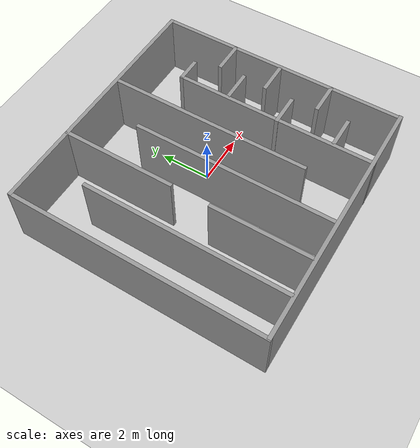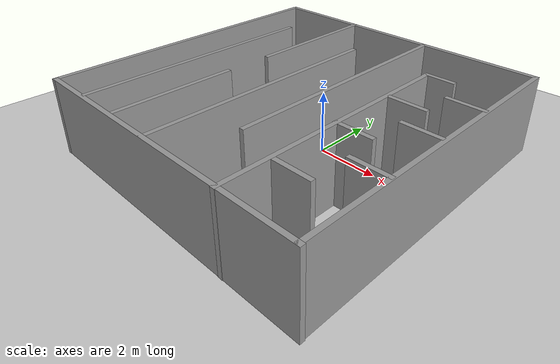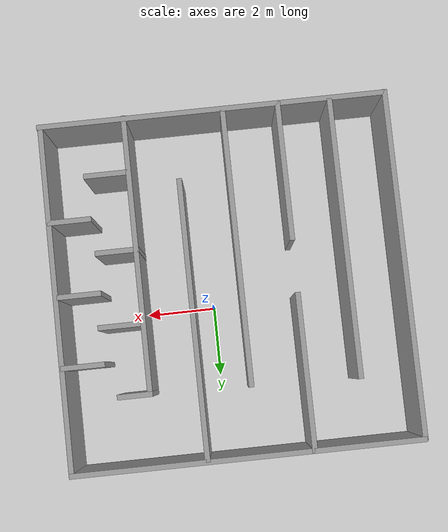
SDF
<sdf version="1.7">
 <world name="default">
  <light name="sun" type="directional">
   <pose>0 0 10 0 -0 0</pose>
   <diffuse>0.8 0.8 0.8 1</diffuse>
   <specular>0.2 0.2 0.2 1</specular>
   <attenuation>
    <range>1000</range>
    <constant>0.9</constant>
    <linear>0.01</linear>
    <quadratic>0.001</quadratic>
   </attenuation>
   <direction>-0.5 0.1 -0.9</direction>
   <spot><inner_angle>0</inner_angle><outer_angle>0</outer_angle><falloff>0</falloff></spot>
  </light>
  <model name="ground_plane">
   <static>1</static>
   <link name="link">
    <collision name="collision">
     <geometry><plane><normal>0 0 1</normal><size>100 100</size></plane></geometry>
     <surface>
      <contact><collide_bitmask>65535</collide_bitmask></contact>
      <friction><ode><mu>100</mu><mu2>50</mu2></ode></friction>
     </surface>
    </collision>
    <visual name="visual">
     <cast_shadows>0</cast_shadows>
     <geometry><plane><normal>0 0 1</normal><size>100 100</size></plane></geometry>
     <material>
      <script><uri>file://media/materials/scripts/gazebo.material</uri><name>Gazebo/Grey</name></script>
     </material>
    </visual>
   </link>
  </model>
  <gravity>0 0 -9.8</gravity>
  <magnetic_field>6e-06 2.3e-05 -4.2e-05</magnetic_field>
  <atmosphere type="adiabatic"/>
  <physics type="ode">
   <max_step_size>0.001</max_step_size>
   <real_time_factor>1</real_time_factor>
   <real_time_update_rate>1000</real_time_update_rate>
  </physics>
  <scene><ambient>0.4 0.4 0.4 1</ambient><background>0.7 0.7 0.7 1</background><shadows>1</shadows></scene>
  <spherical_coordinates>
   <surface_model>EARTH_WGS84</surface_model>
   <latitude_deg>0</latitude_deg>
   <longitude_deg>0</longitude_deg>
   <elevation>0</elevation>
   <heading_deg>0</heading_deg>
  </spherical_coordinates>
  <model name="scots_world">
   <pose>-0.545652 -0.587473 0 0 -0 0</pose>
   <link name="Wall_11">
    <collision name="Wall_11_Collision">
     <geometry><box><size>10 0.15 2.5</size></box></geometry>
     <pose>0 0 1.25 0 -0 0</pose>
    </collision>
    <visual name="Wall_11_Visual">
     <pose>0 0 1.25 0 -0 0</pose>
     <geometry><box><size>10 0.15 2.5</size></box></geometry>
     <material>
      <script><uri>file://media/materials/scripts/gazebo.material</uri><name>Gazebo/Grey</name></script>
      <ambient>1 1 1 1</ambient>
     </material>
     <meta><layer>0</layer></meta>
    </visual>
    <pose>-0.002805 4.94099 0 0 -0 0</pose>
   </link>
   <link name="Wall_13">
    <collision name="Wall_13_Collision">
     <geometry><box><size>10 0.15 2.5</size></box></geometry>
     <pose>0 0 1.25 0 -0 0</pose>
    </collision>
    <visual name="Wall_13_Visual">
     <pose>0 0 1.25 0 -0 0</pose>
     <geometry><box><size>10 0.15 2.5</size></box></geometry>
     <material>
      <script><uri>file://media/materials/scripts/gazebo.material</uri><name>Gazebo/Grey</name></script>
      <ambient>1 1 1 1</ambient>
     </material>
     <meta><layer>0</layer></meta>
    </visual>
    <pose>0.022416 -4.92932 0 0 -0 0</pose>
   </link>
   <link name="Wall_15">
    <collision name="Wall_15_Collision">
     <geometry><box><size>10 0.15 2.5</size></box></geometry>
     <pose>0 0 1.25 0 -0 0</pose>
    </collision>
    <visual name="Wall_15_Visual">
     <pose>0 0 1.25 0 -0 0</pose>
     <geometry><box><size>10 0.15 2.5</size></box></geometry>
     <material>
      <script><uri>file://media/materials/scripts/gazebo.material</uri><name>Gazebo/Grey</name></script>
      <ambient>1 1 1 1</ambient>
     </material>
     <meta><layer>0</layer></meta>
    </visual>
    <pose>-4.94742 -0.00983 0 0 -0 1.5708</pose>
   </link>
   <link name="Wall_17">
    <collision name="Wall_17_Collision">
     <geometry><box><size>10 0.15 2.5</size></box></geometry>
     <pose>0 0 1.25 0 -0 0</pose>
    </collision>
    <visual name="Wall_17_Visual">
     <pose>0 0 1.25 0 -0 0</pose>
     <geometry><box><size>10 0.15 2.5</size></box></geometry>
     <material>
      <script><uri>file://media/materials/scripts/gazebo.material</uri><name>Gazebo/Grey</name></script>
      <ambient>1 1 1 1</ambient>
     </material>
     <meta><layer>0</layer></meta>
    </visual>
    <pose>4.9222 0.015994 0 0 -0 -1.5708</pose>
   </link>
   <link name="Wall_19">
    <collision name="Wall_19_Collision">
     <geometry><box><size>8 0.15 2.5</size></box></geometry>
     <pose>0 0 1.25 0 -0 0</pose>
    </collision>
    <visual name="Wall_19_Visual">
     <pose>0 0 1.25 0 -0 0</pose>
     <geometry><box><size>8 0.15 2.5</size></box></geometry>
     <material>
      <script><uri>file://media/materials/scripts/gazebo.material</uri><name>Gazebo/Grey</name></script>
      <ambient>1 1 1 1</ambient>
     </material>
     <meta><layer>0</layer></meta>
    </visual>
    <pose>-3.35961 -0.903962 0 0 -0 1.5708</pose>
   </link>
   <link name="Wall_24">
    <collision name="Wall_24_Collision">
     <geometry><box><size>4 0.15 2.5</size></box></geometry>
     <pose>0 0 1.25 0 -0 0</pose>
    </collision>
    <visual name="Wall_24_Visual">
     <pose>0 0 1.25 0 -0 0</pose>
     <geometry><box><size>4 0.15 2.5</size></box></geometry>
     <material>
      <script><uri>file://media/materials/scripts/gazebo.material</uri><name>Gazebo/Grey</name></script>
      <ambient>1 1 1 1</ambient>
     </material>
     <meta><layer>0</layer></meta>
    </visual>
    <pose>-1.87423 -2.97261 0 0 -0 -1.5708</pose>
   </link>
   <link name="Wall_27">
    <collision name="Wall_27_Collision">
     <geometry><box><size>4.5 0.15 2.5</size></box></geometry>
     <pose>0 0 1.25 0 -0 0</pose>
    </collision>
    <visual name="Wall_27_Visual">
     <pose>0 0 1.25 0 -0 0</pose>
     <geometry><box><size>4.5 0.15 2.5</size></box></geometry>
     <material>
      <script><uri>file://media/materials/scripts/gazebo.material</uri><name>Gazebo/Grey</name></script>
      <ambient>1 1 1 1</ambient>
     </material>
     <meta><layer>0</layer></meta>
    </visual>
    <pose>-1.86015 2.75112 0 0 -0 -1.5708</pose>
   </link>
   <link name="Wall_30">
    <collision name="Wall_30_Collision">
     <geometry><box><size>8 0.15 2.5</size></box></geometry>
     <pose>0 0 1.25 0 -0 0</pose>
    </collision>
    <visual name="Wall_30_Visual">
     <pose>0 0 1.25 0 -0 0</pose>
     <geometry><box><size>8 0.15 2.5</size></box></geometry>
     <material>
      <script><uri>file://media/materials/scripts/gazebo.material</uri><name>Gazebo/Grey</name></script>
      <ambient>1 1 1 1</ambient>
     </material>
     <meta><layer>0</layer></meta>
    </visual>
    <pose>-0.294931 -0.987243 0 0 -0 -1.5708</pose>
   </link>
   <link name="Wall_32">
    <collision name="Wall_32_Collision">
     <geometry><box><size>8 0.15 2.5</size></box></geometry>
     <pose>0 0 1.25 0 -0 0</pose>
    </collision>
    <visual name="Wall_32_Visual">
     <pose>0 0 1.25 0 -0 0</pose>
     <geometry><box><size>8 0.15 2.5</size></box></geometry>
     <material>
      <script><uri>file://media/materials/scripts/gazebo.material</uri><name>Gazebo/Grey</name></script>
      <ambient>1 1 1 1</ambient>
     </material>
     <meta><layer>0</layer></meta>
    </visual>
    <pose>1.13313 0.94366 0 0 -0 -1.5708</pose>
   </link>
   <link name="Wall_34">
    <collision name="Wall_34_Collision">
     <geometry><box><size>8 0.15 2.5</size></box></geometry>
     <pose>0 0 1.25 0 -0 0</pose>
    </collision>
    <visual name="Wall_34_Visual">
     <pose>0 0 1.25 0 -0 0</pose>
     <geometry><box><size>8 0.15 2.5</size></box></geometry>
     <material>
      <script><uri>file://media/materials/scripts/gazebo.material</uri><name>Gazebo/Grey</name></script>
      <ambient>1 1 1 1</ambient>
     </material>
     <meta><layer>0</layer></meta>
    </visual>
    <pose>2.54108 -1.01599 0 0 -0 -1.5708</pose>
   </link>
   <link name="Wall_38">
    <collision name="Wall_38_Collision">
     <geometry><box><size>1 0.15 2.5</size></box></geometry>
     <pose>0 0 1.25 0 -0 0</pose>
    </collision>
    <visual name="Wall_38_Visual">
     <pose>0 0 1.25 0 -0 0</pose>
     <geometry><box><size>1 0.15 2.5</size></box></geometry>
     <material>
      <script><uri>file://media/materials/scripts/gazebo.material</uri><name>Gazebo/Grey</name></script>
      <ambient>1 1 1 1</ambient>
     </material>
     <meta><layer>0</layer></meta>
    </visual>
    <pose>2.96608 2.90901 0 0 -0 3.14159</pose>
   </link>
   <link name="Wall_40">
    <collision name="Wall_40_Collision">
     <geometry><box><size>1.25 0.15 2.5</size></box></geometry>
     <pose>0 0 1.25 0 -0 0</pose>
    </collision>
    <visual name="Wall_40_Visual">
     <pose>0 0 1.25 0 -0 0</pose>
     <geometry><box><size>1.25 0.15 2.5</size></box></geometry>
     <material>
      <script><uri>file://media/materials/scripts/gazebo.material</uri><name>Gazebo/Grey</name></script>
      <ambient>1 1 1 1</ambient>
     </material>
     <meta><layer>0</layer></meta>
    </visual>
    <pose>4.33812 1.95219 0 0 -0 0</pose>
   </link>
   <link name="Wall_42">
    <collision name="Wall_42_Collision">
     <geometry><box><size>1.25 0.15 2.5</size></box></geometry>
     <pose>0 0 1.25 0 -0 0</pose>
    </collision>
    <visual name="Wall_42_Visual">
     <pose>0 0 1.25 0 -0 0</pose>
     <geometry><box><size>1.25 0.15 2.5</size></box></geometry>
     <material>
      <script><uri>file://media/materials/scripts/gazebo.material</uri><name>Gazebo/Grey</name></script>
      <ambient>1 1 1 1</ambient>
     </material>
     <meta><layer>0</layer></meta>
    </visual>
    <pose>3.1979 0.9264 0 0 -0 3.14159</pose>
   </link>
   <link name="Wall_44">
    <collision name="Wall_44_Collision">
     <geometry><box><size>1.25 0.15 2.5</size></box></geometry>
     <pose>0 0 1.25 0 -0 0</pose>
    </collision>
    <visual name="Wall_44_Visual">
     <pose>0 0 1.25 0 -0 0</pose>
     <geometry><box><size>1.25 0.15 2.5</size></box></geometry>
     <material>
      <script><uri>file://media/materials/scripts/gazebo.material</uri><name>Gazebo/Grey</name></script>
      <ambient>1 1 1 1</ambient>
     </material>
     <meta><layer>0</layer></meta>
    </visual>
    <pose>4.25767 -0.039052 0 0 -0 0</pose>
   </link>
   <link name="Wall_46">
    <collision name="Wall_46_Collision">
     <geometry><box><size>1.25 0.15 2.5</size></box></geometry>
     <pose>0 0 1.25 0 -0 0</pose>
    </collision>
    <visual name="Wall_46_Visual">
     <pose>0 0 1.25 0 -0 0</pose>
     <geometry><box><size>1.25 0.15 2.5</size></box></geometry>
     <material>
      <script><uri>file://media/materials/scripts/gazebo.material</uri><name>Gazebo/Grey</name></script>
      <ambient>1 1 1 1</ambient>
     </material>
     <meta><layer>0</layer></meta>
    </visual>
    <pose>3.08073 -1.1693 0 0 -0 3.14159</pose>
   </link>
   <link name="Wall_48">
    <collision name="Wall_48_Collision">
     <geometry><box><size>1.25 0.15 2.5</size></box></geometry>
     <pose>0 0 1.25 0 -0 0</pose>
    </collision>
    <visual name="Wall_48_Visual">
     <pose>0 0 1.25 0 -0 0</pose>
     <geometry><box><size>1.25 0.15 2.5</size></box></geometry>
     <material>
      <script><uri>file://media/materials/scripts/gazebo.material</uri><name>Gazebo/Grey</name></script>
      <ambient>1 1 1 1</ambient>
     </material>
     <meta><layer>0</layer></meta>
    </visual>
    <pose>4.34173 -2.16303 0 0 -0 3.14159</pose>
   </link>
   <link name="Wall_50">
    <collision name="Wall_50_Collision">
     <geometry><box><size>1.25 0.15 2.5</size></box></geometry>
     <pose>0 0 1.25 0 -0 0</pose>
    </collision>
    <visual name="Wall_50_Visual">
     <pose>0 0 1.25 0 -0 0</pose>
     <geometry><box><size>1.25 0.15 2.5</size></box></geometry>
     <material>
      <script><uri>file://media/materials/scripts/gazebo.material</uri><name>Gazebo/Grey</name></script>
      <ambient>1 1 1 1</ambient>
     </material>
     <meta><layer>0</layer></meta>
    </visual>
    <pose>3.19806 -3.38895 0 0 -0 0</pose>
   </link>
   <static>1</static>
  </model>
 </world>
</sdf>
